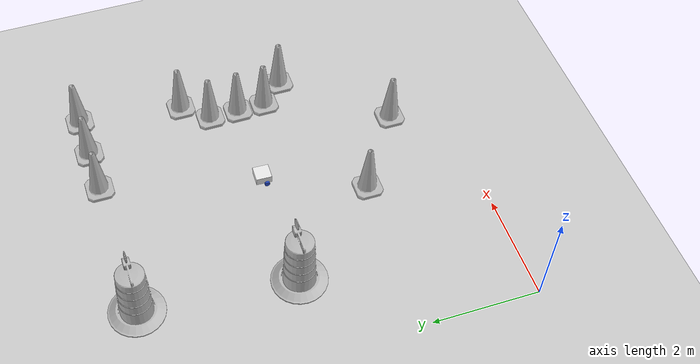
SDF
<sdf version="1.7">
 <world name="default">
  <light name="sun" type="directional">
   <pose>0 0 10 0 -0 0</pose>
   <diffuse>0.8 0.8 0.8 1</diffuse>
   <specular>0.2 0.2 0.2 1</specular>
   <attenuation>
    <range>1000</range>
    <constant>0.9</constant>
    <linear>0.01</linear>
    <quadratic>0.001</quadratic>
   </attenuation>
   <direction>-0.5 0.1 -0.9</direction>
   <spot><inner_angle>0</inner_angle><outer_angle>0</outer_angle><falloff>0</falloff></spot>
  </light>
  <model name="ground_plane">
   <static>1</static>
   <link name="link">
    <collision name="collision">
     <geometry><plane><normal>0 0 1</normal><size>100 100</size></plane></geometry>
     <surface>
      <contact><collide_bitmask>65535</collide_bitmask></contact>
      <friction><ode><mu>100</mu><mu2>50</mu2></ode></friction>
     </surface>
    </collision>
    <visual name="visual">
     <cast_shadows>0</cast_shadows>
     <geometry><plane><normal>0 0 1</normal><size>100 100</size></plane></geometry>
     <material>
      <script><uri>file://media/materials/scripts/gazebo.material</uri><name>Gazebo/Grey</name></script>
     </material>
    </visual>
   </link>
  </model>
  <gravity>0 0 -9.8</gravity>
  <magnetic_field>6e-06 2.3e-05 -4.2e-05</magnetic_field>
  <atmosphere type="adiabatic"/>
  <physics type="ode">
   <max_step_size>0.001</max_step_size>
   <real_time_factor>1</real_time_factor>
   <real_time_update_rate>1000</real_time_update_rate>
  </physics>
  <scene><ambient>0.4 0.4 0.4 1</ambient><background>0.7 0.7 0.7 1</background><shadows>1</shadows></scene>
  <audio><device>default</device></audio>
  <spherical_coordinates>
   <surface_model>EARTH_WGS84</surface_model>
   <latitude_deg>0</latitude_deg>
   <longitude_deg>0</longitude_deg>
   <elevation>0</elevation>
   <heading_deg>0</heading_deg>
  </spherical_coordinates>
  <model name="Construction Barrel">
   <link name="link">
    <inertial>
     <pose>0 0 0.4 0 -0 0</pose>
     <mass>500</mass>
     <inertia><ixx>51.2096</ixx><iyy>51.2096</iyy><izz>25</izz><ixy>0</ixy><ixz>0</ixz><iyz>0</iyz></inertia>
    </inertial>
    <collision name="collision">
     <geometry><mesh><uri>model://construction_barrel/meshes/construction_barrel.dae</uri></mesh></geometry>
    </collision>
    <visual name="visual">
     <geometry><mesh><uri>model://construction_barrel/meshes/construction_barrel.dae</uri></mesh></geometry>
    </visual>
   </link>
   <pose>1.76731 6.73807 -0 0 -0 -3e-05</pose>
  </model>
  <model name="Construction Barrel_0">
   <link name="link">
    <inertial>
     <pose>0 0 0.4 0 -0 0</pose>
     <mass>500</mass>
     <inertia><ixx>51.2096</ixx><iyy>51.2096</iyy><izz>25</izz><ixy>0</ixy><ixz>0</ixz><iyz>0</iyz></inertia>
    </inertial>
    <collision name="collision">
     <geometry><mesh><uri>model://construction_barrel/meshes/construction_barrel.dae</uri></mesh></geometry>
    </collision>
    <visual name="visual">
     <geometry><mesh><uri>model://construction_barrel/meshes/construction_barrel.dae</uri></mesh></geometry>
    </visual>
   </link>
   <pose>1.52515 3.8893 -2e-06 7e-06 -4e-06 -2.6e-05</pose>
  </model>
  <model name="Construction Cone">
   <link name="link">
    <collision name="collision">
     <geometry>
      <mesh><scale>10 10 10</scale><uri>model://construction_cone/meshes/construction_cone.dae</uri></mesh>
     </geometry>
    </collision>
    <visual name="visual">
     <geometry>
      <mesh><scale>10 10 10</scale><uri>model://construction_cone/meshes/construction_cone.dae</uri></mesh>
     </geometry>
    </visual>
    <inertial>
     <inertia><ixx>1</ixx><ixy>0</ixy><ixz>0</ixz><iyy>1</iyy><iyz>0</iyz><izz>1</izz></inertia>
     <mass>1</mass>
    </inertial>
   </link>
   <pose>4.5103 6.80854 -0 0 -0 0</pose>
  </model>
  <model name="Construction Cone_0">
   <link name="link">
    <collision name="collision">
     <geometry>
      <mesh><scale>10 10 10</scale><uri>model://construction_cone/meshes/construction_cone.dae</uri></mesh>
     </geometry>
    </collision>
    <visual name="visual">
     <geometry>
      <mesh><scale>10 10 10</scale><uri>model://construction_cone/meshes/construction_cone.dae</uri></mesh>
     </geometry>
    </visual>
    <inertial>
     <inertia><ixx>1</ixx><ixy>0</ixy><ixz>0</ixz><iyy>1</iyy><iyz>0</iyz><izz>1</izz></inertia>
     <mass>1</mass>
    </inertial>
   </link>
   <pose>5.38521 6.82405 -0 0 -0 0</pose>
  </model>
  <model name="Construction Cone_1">
   <link name="link">
    <collision name="collision">
     <geometry>
      <mesh><scale>10 10 10</scale><uri>model://construction_cone/meshes/construction_cone.dae</uri></mesh>
     </geometry>
    </collision>
    <visual name="visual">
     <geometry>
      <mesh><scale>10 10 10</scale><uri>model://construction_cone/meshes/construction_cone.dae</uri></mesh>
     </geometry>
    </visual>
    <inertial>
     <inertia><ixx>1</ixx><ixy>0</ixy><ixz>0</ixz><iyy>1</iyy><iyz>0</iyz><izz>1</izz></inertia>
     <mass>1</mass>
    </inertial>
   </link>
   <pose>6.21127 6.84078 -0 0 -0 0</pose>
  </model>
  <model name="Construction Cone_2">
   <link name="link">
    <collision name="collision">
     <geometry>
      <mesh><scale>10 10 10</scale><uri>model://construction_cone/meshes/construction_cone.dae</uri></mesh>
     </geometry>
    </collision>
    <visual name="visual">
     <geometry>
      <mesh><scale>10 10 10</scale><uri>model://construction_cone/meshes/construction_cone.dae</uri></mesh>
     </geometry>
    </visual>
    <inertial>
     <inertia><ixx>1</ixx><ixy>0</ixy><ixz>0</ixz><iyy>1</iyy><iyz>0</iyz><izz>1</izz></inertia>
     <mass>1</mass>
    </inertial>
   </link>
   <pose>5.97798 4.87643 -0 0 -0 0</pose>
  </model>
  <model name="Construction Cone_3">
   <link name="link">
    <collision name="collision">
     <geometry>
      <mesh><scale>10 10 10</scale><uri>model://construction_cone/meshes/construction_cone.dae</uri></mesh>
     </geometry>
    </collision>
    <visual name="visual">
     <geometry>
      <mesh><scale>10 10 10</scale><uri>model://construction_cone/meshes/construction_cone.dae</uri></mesh>
     </geometry>
    </visual>
    <inertial>
     <inertia><ixx>1</ixx><ixy>0</ixy><ixz>0</ixz><iyy>1</iyy><iyz>0</iyz><izz>1</izz></inertia>
     <mass>1</mass>
    </inertial>
   </link>
   <pose>5.55523 4.39109 -5e-06 -4e-06 1e-06 0</pose>
  </model>
  <model name="Construction Cone_4">
   <link name="link">
    <collision name="collision">
     <geometry>
      <mesh><scale>10 10 10</scale><uri>model://construction_cone/meshes/construction_cone.dae</uri></mesh>
     </geometry>
    </collision>
    <visual name="visual">
     <geometry>
      <mesh><scale>10 10 10</scale><uri>model://construction_cone/meshes/construction_cone.dae</uri></mesh>
     </geometry>
    </visual>
    <inertial>
     <inertia><ixx>1</ixx><ixy>0</ixy><ixz>0</ixz><iyy>1</iyy><iyz>0</iyz><izz>1</izz></inertia>
     <mass>1</mass>
    </inertial>
   </link>
   <pose>5.56162 3.83216 -5e-06 -4e-06 1e-06 0</pose>
  </model>
  <model name="Construction Cone_5">
   <link name="link">
    <collision name="collision">
     <geometry>
      <mesh><scale>10 10 10</scale><uri>model://construction_cone/meshes/construction_cone.dae</uri></mesh>
     </geometry>
    </collision>
    <visual name="visual">
     <geometry>
      <mesh><scale>10 10 10</scale><uri>model://construction_cone/meshes/construction_cone.dae</uri></mesh>
     </geometry>
    </visual>
    <inertial>
     <inertia><ixx>1</ixx><ixy>0</ixy><ixz>0</ixz><iyy>1</iyy><iyz>0</iyz><izz>1</izz></inertia>
     <mass>1</mass>
    </inertial>
   </link>
   <pose>5.57644 3.29414 0 -0 -0 -0</pose>
  </model>
  <model name="Construction Cone_6">
   <link name="link">
    <collision name="collision">
     <geometry>
      <mesh><scale>10 10 10</scale><uri>model://construction_cone/meshes/construction_cone.dae</uri></mesh>
     </geometry>
    </collision>
    <visual name="visual">
     <geometry>
      <mesh><scale>10 10 10</scale><uri>model://construction_cone/meshes/construction_cone.dae</uri></mesh>
     </geometry>
    </visual>
    <inertial>
     <inertia><ixx>1</ixx><ixy>0</ixy><ixz>0</ixz><iyy>1</iyy><iyz>0</iyz><izz>1</izz></inertia>
     <mass>1</mass>
    </inertial>
   </link>
   <pose>6.02031 2.85001 -1e-05 -1e-06 0 0</pose>
  </model>
  <model name="Construction Cone_7">
   <link name="link">
    <collision name="collision">
     <geometry>
      <mesh><scale>10 10 10</scale><uri>model://construction_cone/meshes/construction_cone.dae</uri></mesh>
     </geometry>
    </collision>
    <visual name="visual">
     <geometry>
      <mesh><scale>10 10 10</scale><uri>model://construction_cone/meshes/construction_cone.dae</uri></mesh>
     </geometry>
    </visual>
    <inertial>
     <inertia><ixx>1</ixx><ixy>0</ixy><ixz>0</ixz><iyy>1</iyy><iyz>0</iyz><izz>1</izz></inertia>
     <mass>1</mass>
    </inertial>
   </link>
   <pose>3.03778 2.05796 -0 0 -1e-06 0</pose>
  </model>
  <model name="Construction Cone_8">
   <link name="link">
    <collision name="collision">
     <geometry>
      <mesh><scale>10 10 10</scale><uri>model://construction_cone/meshes/construction_cone.dae</uri></mesh>
     </geometry>
    </collision>
    <visual name="visual">
     <geometry>
      <mesh><scale>10 10 10</scale><uri>model://construction_cone/meshes/construction_cone.dae</uri></mesh>
     </geometry>
    </visual>
    <inertial>
     <inertia><ixx>1</ixx><ixy>0</ixy><ixz>0</ixz><iyy>1</iyy><iyz>0</iyz><izz>1</izz></inertia>
     <mass>1</mass>
    </inertial>
   </link>
   <pose>4.5175 1.05431 -8e-06 1e-06 -0 0</pose>
  </model>
  <model name="my_bot">
   <link name="base_link">
    <inertial>
     <pose>0.065 0 0.0625 0 -0 0</pose>
     <mass>0.6</mass>
     <inertia>
      <ixx>0.00525625</ixx>
      <ixy>0</ixy>
      <ixz>0.0005625</ixz>
      <iyy>0.00593125</iyy>
      <iyz>0</iyz>
      <izz>0.008275</izz>
     </inertia>
    </inertial>
    <collision name="base_link_fixed_joint_lump__chassis_collision">
     <pose>0.05 0 0.075 0 -0 0</pose>
     <geometry><box><size>0.3 0.3 0.15</size></box></geometry>
    </collision>
    <collision name="base_link_fixed_joint_lump__caster_wheel_collision_1">
     <pose>0.14 0 0 0 -0 0</pose>
     <geometry><sphere><radius>0.05</radius></sphere></geometry>
     <surface><friction><ode><mu>0.001</mu><mu2>0.001</mu2></ode></friction></surface>
    </collision>
    <visual name="base_link_fixed_joint_lump__chassis_visual">
     <pose>0.05 0 0.075 0 -0 0</pose>
     <geometry><box><size>0.3 0.3 0.15</size></box></geometry>
     <material>
      <script><name>Gazebo/White</name><uri>file://media/materials/scripts/gazebo.material</uri></script>
     </material>
    </visual>
    <visual name="base_link_fixed_joint_lump__caster_wheel_visual_1">
     <pose>0.14 0 0 0 -0 0</pose>
     <geometry><sphere><radius>0.05</radius></sphere></geometry>
     <material>
      <script><name>Gazebo/Black</name><uri>file://media/materials/scripts/gazebo.material</uri></script>
     </material>
    </visual>
   </link>
   <joint name="left_wheel_joint" type="revolute">
    <pose relative_to="base_link">0 0.175 0 -1.5708 0 0</pose>
    <parent>base_link</parent>
    <child>left_wheel</child>
    <axis>
     <xyz>0 0 1</xyz>
     <limit><lower>-1e+16</lower><upper>1e+16</upper></limit>
     <dynamics><spring_reference>0</spring_reference><spring_stiffness>0</spring_stiffness></dynamics>
    </axis>
   </joint>
   <link name="left_wheel">
    <pose relative_to="left_wheel_joint">0 0 0 0 -0 0</pose>
    <inertial>
     <mass>0.1</mass>
     <inertia>
      <ixx>7.58333e-05</ixx>
      <ixy>0</ixy>
      <ixz>0</ixz>
      <iyy>7.58333e-05</iyy>
      <iyz>0</iyz>
      <izz>0.000125</izz>
     </inertia>
    </inertial>
    <collision name="left_wheel_collision">
     <geometry><cylinder><length>0.04</length><radius>0.05</radius></cylinder></geometry>
    </collision>
    <visual name="left_wheel_visual">
     <geometry><cylinder><length>0.04</length><radius>0.05</radius></cylinder></geometry>
     <material>
      <script><name>Gazebo/Blue</name><uri>file://media/materials/scripts/gazebo.material</uri></script>
     </material>
    </visual>
   </link>
   <joint name="right_wheel_joint" type="revolute">
    <pose relative_to="base_link">0 -0.175 0 1.5708 -0 0</pose>
    <parent>base_link</parent>
    <child>right_wheel</child>
    <axis>
     <xyz>0 0 -1</xyz>
     <limit><lower>-1e+16</lower><upper>1e+16</upper></limit>
     <dynamics><spring_reference>0</spring_reference><spring_stiffness>0</spring_stiffness></dynamics>
    </axis>
   </joint>
   <link name="right_wheel">
    <pose relative_to="right_wheel_joint">0 0 0 0 -0 0</pose>
    <inertial>
     <mass>0.1</mass>
     <inertia>
      <ixx>7.58333e-05</ixx>
      <ixy>0</ixy>
      <ixz>0</ixz>
      <iyy>7.58333e-05</iyy>
      <iyz>0</iyz>
      <izz>0.000125</izz>
     </inertia>
    </inertial>
    <collision name="right_wheel_collision">
     <geometry><cylinder><length>0.04</length><radius>0.05</radius></cylinder></geometry>
    </collision>
    <visual name="right_wheel_visual">
     <geometry><cylinder><length>0.04</length><radius>0.05</radius></cylinder></geometry>
     <material>
      <script><name>Gazebo/Blue</name><uri>file://media/materials/scripts/gazebo.material</uri></script>
     </material>
    </visual>
   </link>
   <static>0</static>
   <plugin name="diff_drive" filename="libgazebo_ros_diff_drive.so">
    <left_joint>left_wheel_joint</left_joint>
    <right_joint>right_wheel_joint</right_joint>
    <wheel_separation>0.35</wheel_separation>
    <wheel_diameter>0.1</wheel_diameter>
    <max_wheel_torque>200</max_wheel_torque>
    <max_wheel_acceleration>10.0</max_wheel_acceleration>
    <odomoetry_frame>odom</odomoetry_frame>
    <robot_base_frame>base_link</robot_base_frame>
    <publish_odom>1</publish_odom>
    <publish_odom_tf>1</publish_odom_tf>
    <publish_wheel_tf>1</publish_wheel_tf>
   </plugin>
   <pose>3.83761 3.80653 0.05 0 1.5e-05 1.53779</pose>
  </model>
 </world>
</sdf>
